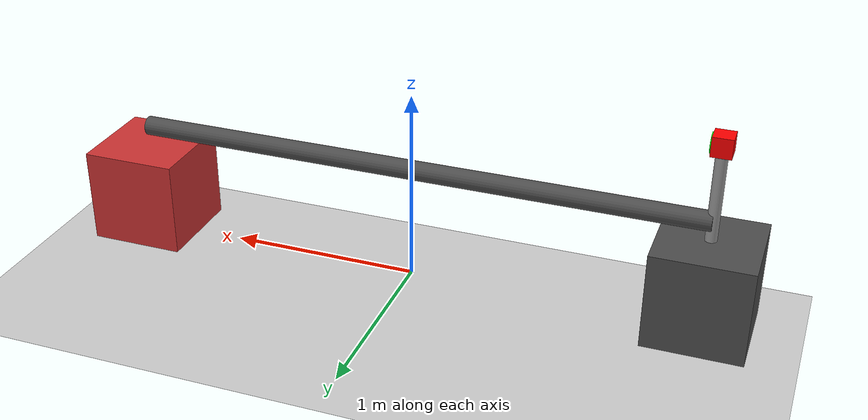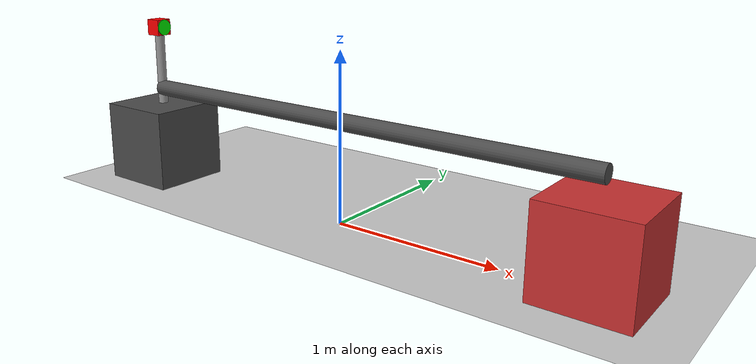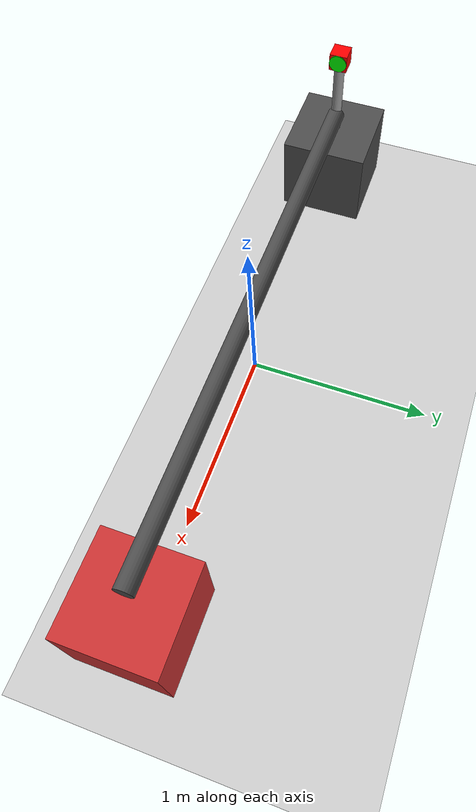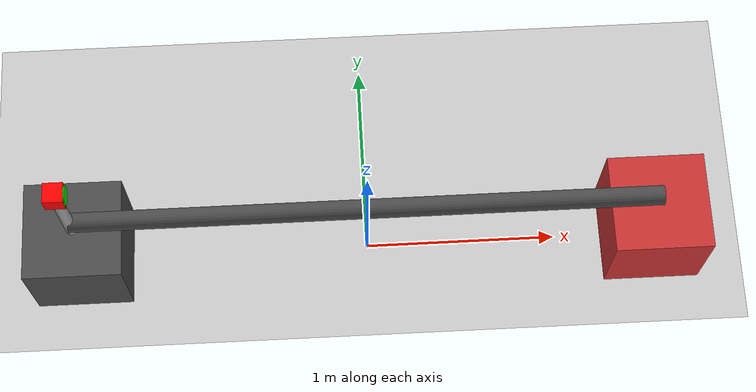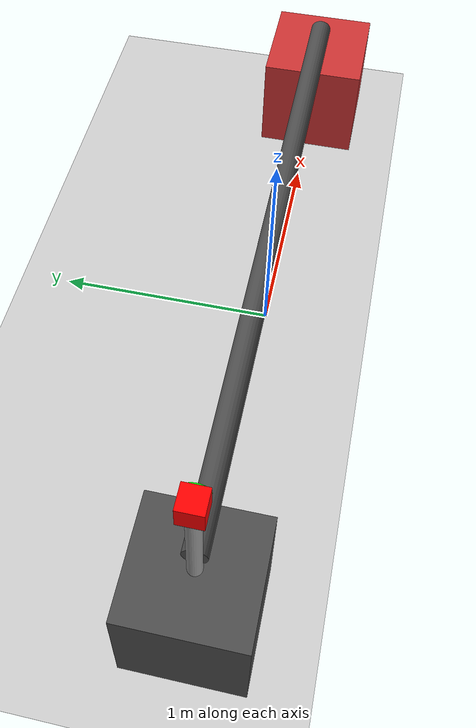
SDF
<?xml version="1.0" ?>
<sdf version="1.6">
  <world name="pipe_world">

    <!-- Ground and Sun -->
    <include>
      <uri>model://ground_plane</uri>
    </include>

    <include>
      <uri>model://sun</uri>
    </include>

    <!-- Left Block with Camera -->
    <include>
      <uri>model://block_with_camera</uri>
      <pose>-1.5 0 0.25 0 0 0</pose>
    </include>

    <!-- Right Block -->
    <include>
      <uri>model://block</uri>
      <pose>1.5 0 0.25 0 0 0</pose>
    </include>

    <!-- Pipe -->
    <include>
      <uri>model://pipe</uri>
      <pose>0 0 0.6 0 1.5708 0</pose> <!-- Rotate to lay horizontally -->
    </include>

  </world>
</sdf>

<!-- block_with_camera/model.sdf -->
<sdf version="1.6">
  <model name="block_with_camera">
    <static>true</static>

    <!-- Block base -->
    <link name="block_base">
      <pose>0 0 0 0 0 0</pose> <!-- half-height above ground -->
      <visual name="block_visual">
        <geometry>
          <box><size>0.5 0.5 0.5</size></box>
        </geometry>
        <material>
          <ambient>0.3 0.3 0.3 1</ambient>
        </material>
      </visual>
      <collision name="block_collision">
        <geometry>
          <box><size>0.5 0.5 0.5</size></box>
        </geometry>
      </collision>
    </link>

    <!-- Pole -->
    <link name="camera_pole">
      <pose>0 0 0.5 0 0 0</pose>
      <visual name="pole_visual">
        <geometry>
          <cylinder>
            <radius>0.03</radius>
            <length>0.5</length>
          </cylinder>
        </geometry>
        <material>
          <ambient>0.6 0.6 0.6 1</ambient>
        </material>
      </visual>
      <collision name="pole_collision">
        <geometry>
          <cylinder>
            <radius>0.03</radius>
            <length>0.5</length>
          </cylinder>
        </geometry>
      </collision>
    </link>

    <!-- Camera -->
    <link name="camera_link">
      <pose>0 0 0.75 0 0 0</pose> <!-- top of pole -->

      <!-- Visual marker for camera -->
      <visual name="camera_marker">
        <geometry>
          <box><size>0.1 0.1 0.1</size></box>
        </geometry>
        <material>
          <ambient>1 0 0 1</ambient> <!-- red -->
        </material>
      </visual>

      <!-- Ring to show camera direction -->
      <visual name="camera_ring">
        <pose>0.05 0 0 0 1.5708 0</pose> <!-- Slightly in front of camera, aligned to +X -->
        <geometry>
          <cylinder>
            <radius>0.05</radius>
            <length>0.01</length> <!-- Thin ring -->
          </cylinder>
        </geometry>
        <material>
          <ambient>0 1 0 1</ambient> <!-- green -->
        </material>
      </visual>

      <!-- Depth camera sensor -->
      <sensor name="depth_camera" type="depth">
        <pose>0 0 0 0 0 0</pose>
        <camera>
          <horizontal_fov>1.047</horizontal_fov>
          <image>
            <width>640</width>
            <height>480</height>
            <format>R8G8B8</format>
          </image>
          <clip>
            <near>0.05</near>
            <far>5.0</far>
          </clip>
        </camera>
        <always_on>true</always_on>
        <update_rate>30</update_rate>
        <visualize>true</visualize>

        <plugin name="camera_plugin" filename="libgazebo_ros_camera.so">
          <ros>
            <namespace>/camera</namespace>
          </ros>
          <camera_name>depth_camera</camera_name>
          <image_topic_name>image_raw</image_topic_name>
          <depth_topic_name>depth/image_raw</depth_topic_name>
          <info_topic_name>camera_info</info_topic_name>
          <frame_name>camera_link</frame_name>
        </plugin>
      </sensor>
    </link>

    <!-- Fixed joints -->
    <joint name="pole_to_block" type="fixed">
      <parent>block_base</parent>
      <child>camera_pole</child>
    </joint>

    <joint name="camera_to_pole" type="fixed">
      <parent>camera_pole</parent>
      <child>camera_link</child>
    </joint>
  </model>
</sdf>

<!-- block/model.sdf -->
<sdf version="1.6">
  <model name="block">
    <static>true</static>
    <link name="block_link">
      <collision name="block_collision">
        <geometry>
          <box>
            <size>0.5 0.5 0.5</size>
          </box>
        </geometry>
      </collision>
      <visual name="block_visual">
        <geometry>
          <box>
            <size>0.5 0.5 0.5</size>
          </box>
        </geometry>
        <material>
          <ambient>0.8 0.2 0.2 1</ambient>
        </material>
      </visual>
    </link>
  </model>
</sdf>

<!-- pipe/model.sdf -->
<sdf version="1.6">
  <model name="pipe">
    <static>false</static>
    <link name="pipe_link">
      <collision name="pipe_collision">
        <geometry>
          <cylinder>
            <radius>0.05</radius>
            <length>3.0</length>
          </cylinder>
        </geometry>
      </collision>
      <visual name="pipe_visual">
        <geometry>
          <cylinder>
            <radius>0.05</radius>
            <length>3.0</length>
          </cylinder>
        </geometry>
        <material>
          <ambient>0.3 0.3 0.3 1</ambient>
        </material>
      </visual>
    </link>
  </model>
</sdf>
